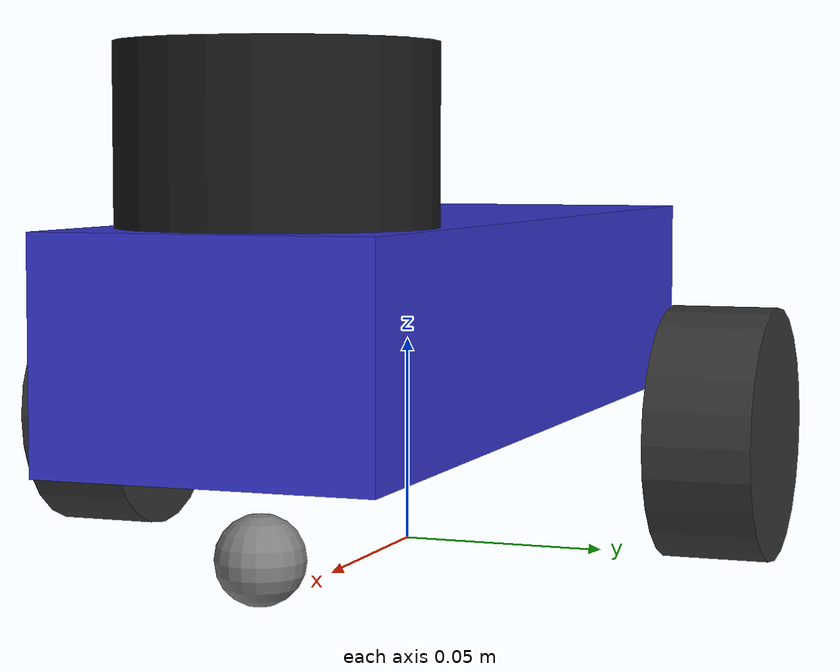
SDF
<?xml version="1.0" ?>
<sdf version="1.8">
  <model name="daro">
    <pose>0 0 0 0 0 0</pose>

    <!-- ── Chassis ─────────────────────────────────────────────────────── -->
    <link name="base_link">
      <inertial>
        <mass>1.5</mass>
        <inertia>
          <!-- box inertia: m/12*(y²+z²), m/12*(x²+z²), m/12*(x²+y²) -->
          <ixx>0.00327</ixx>
          <iyy>0.01023</iyy>
          <izz>0.01202</izz>
          <ixy>0</ixy><ixz>0</ixz><iyz>0</iyz>
        </inertia>
      </inertial>

      <visual name="chassis_visual">
        <pose>0 0 0.055 0 0 0</pose>
        <geometry>
          <box><size>0.2413 0.0762 0.0508</size></box>
        </geometry>
        <material>
          <ambient>0.2 0.2 0.8 1</ambient>
          <diffuse>0.2 0.2 0.8 1</diffuse>
        </material>
      </visual>

      <collision name="chassis_collision">
        <pose>0 0 0.055 0 0 0</pose>
        <geometry>
          <box><size>0.2413 0.0762 0.0508</size></box>
        </geometry>
      </collision>
    </link>

    <!-- ── Left wheel ─────────────────────────────────────────────────── -->
    <link name="left_wheel">
      <pose>0 0.08 0.03 1.5707963 0 0</pose>
      <inertial>
        <mass>0.1</mass>
        <inertia>
          <ixx>0.0000453</ixx><iyy>0.0000453</iyy><izz>0.000045</izz>
          <ixy>0</ixy><ixz>0</ixz><iyz>0</iyz>
        </inertia>
      </inertial>
      <visual name="visual">
        <geometry>
          <cylinder><radius>0.03</radius><length>0.025</length></cylinder>
        </geometry>
        <material>
          <ambient>0.1 0.1 0.1 1</ambient>
          <diffuse>0.2 0.2 0.2 1</diffuse>
        </material>
      </visual>
      <collision name="collision">
        <geometry>
          <cylinder><radius>0.03</radius><length>0.025</length></cylinder>
        </geometry>
        <surface>
          <friction><ode><mu>1.0</mu><mu2>1.0</mu2></ode></friction>
        </surface>
      </collision>
    </link>

    <joint name="left_wheel_joint" type="revolute">
      <parent>base_link</parent>
      <child>left_wheel</child>
      <axis>
        <xyz>0 0 1</xyz>
        <limit><lower>-1e+16</lower><upper>1e+16</upper></limit>
      </axis>
    </joint>

    <!-- ── Right wheel ────────────────────────────────────────────────── -->
    <link name="right_wheel">
      <pose>0 -0.08 0.03 1.5707963 0 0</pose>
      <inertial>
        <mass>0.1</mass>
        <inertia>
          <ixx>0.0000453</ixx><iyy>0.0000453</iyy><izz>0.000045</izz>
          <ixy>0</ixy><ixz>0</ixz><iyz>0</iyz>
        </inertia>
      </inertial>
      <visual name="visual">
        <geometry>
          <cylinder><radius>0.03</radius><length>0.025</length></cylinder>
        </geometry>
        <material>
          <ambient>0.1 0.1 0.1 1</ambient>
          <diffuse>0.2 0.2 0.2 1</diffuse>
        </material>
      </visual>
      <collision name="collision">
        <geometry>
          <cylinder><radius>0.03</radius><length>0.025</length></cylinder>
        </geometry>
        <surface>
          <friction><ode><mu>1.0</mu><mu2>1.0</mu2></ode></friction>
        </surface>
      </collision>
    </link>

    <joint name="right_wheel_joint" type="revolute">
      <parent>base_link</parent>
      <child>right_wheel</child>
      <axis>
        <xyz>0 0 1</xyz>
        <limit><lower>-1e+16</lower><upper>1e+16</upper></limit>
      </axis>
    </joint>

    <!-- ── Front caster (ball) ────────────────────────────────────────── -->
    <link name="caster">
      <pose>0.09 0 0.01 0 0 0</pose>
      <inertial>
        <mass>0.05</mass>
        <inertia>
          <ixx>0.000002</ixx><iyy>0.000002</iyy><izz>0.000002</izz>
          <ixy>0</ixy><ixz>0</ixz><iyz>0</iyz>
        </inertia>
      </inertial>
      <visual name="visual">
        <geometry><sphere><radius>0.01</radius></sphere></geometry>
        <material><ambient>0.5 0.5 0.5 1</ambient></material>
      </visual>
      <collision name="collision">
        <geometry><sphere><radius>0.01</radius></sphere></geometry>
        <surface>
          <friction><ode><mu>0.0</mu><mu2>0.0</mu2></ode></friction>
        </surface>
      </collision>
    </link>

    <joint name="caster_joint" type="fixed">
      <parent>base_link</parent>
      <child>caster</child>
    </joint>

    <!-- ── LiDAR ──────────────────────────────────────────────────────── -->
    <link name="laser">
      <pose>0.08 0 0.10 0 0 0</pose>
      <inertial>
        <mass>0.05</mass>
        <inertia>
          <ixx>0.000001</ixx><iyy>0.000001</iyy><izz>0.000001</izz>
          <ixy>0</ixy><ixz>0</ixz><iyz>0</iyz>
        </inertia>
      </inertial>

      <visual name="visual">
        <geometry><cylinder><radius>0.035</radius><length>0.04</length></cylinder></geometry>
        <material><ambient>0.1 0.1 0.1 1</ambient></material>
      </visual>

      <sensor name="lidar_sensor" type="lidar">
        <always_on>true</always_on>
        <update_rate>10</update_rate>
        <visualize>true</visualize>
        <topic>/scan</topic>
        <gz_frame_id>laser</gz_frame_id>
        <ray>
          <scan>
            <horizontal>
              <samples>360</samples>
              <resolution>1</resolution>
              <min_angle>-3.14159</min_angle>
              <max_angle>3.14159</max_angle>
            </horizontal>
            <vertical>
              <samples>1</samples>
              <resolution>0.01</resolution>
              <min_angle>0</min_angle>
              <max_angle>0</max_angle>
            </vertical>
          </scan>
          <range>
            <min>0.15</min>
            <max>12.0</max>
            <resolution>0.01</resolution>
          </range>
          <noise>
            <type>gaussian</type>
            <mean>0.0</mean>
            <stddev>0.01</stddev>
          </noise>
        </ray>
      </sensor>
    </link>

    <joint name="laser_joint" type="fixed">
      <parent>base_link</parent>
      <child>laser</child>
    </joint>

    <!-- ── Differential drive plugin ─────────────────────────────────── -->
    <plugin filename="gz-sim-diff-drive-system"
            name="gz::sim::systems::DiffDrive">
      <left_joint>left_wheel_joint</left_joint>
      <right_joint>right_wheel_joint</right_joint>
      <wheel_separation>0.16</wheel_separation>
      <wheel_radius>0.03</wheel_radius>
      <odom_publish_frequency>20</odom_publish_frequency>
      <topic>/cmd_vel</topic>
      <odom_topic>/odom</odom_topic>
      <tf_topic>/tf</tf_topic>
      <frame_id>odom</frame_id>
      <child_frame_id>base_link</child_frame_id>
      <max_linear_acceleration>2</max_linear_acceleration>
    </plugin>

    <!-- ── Joint state publisher ──────────────────────────────────────── -->
    <plugin filename="gz-sim-joint-state-publisher-system"
            name="gz::sim::systems::JointStatePublisher">
      <topic>/joint_states</topic>
    </plugin>

  </model>
</sdf>
